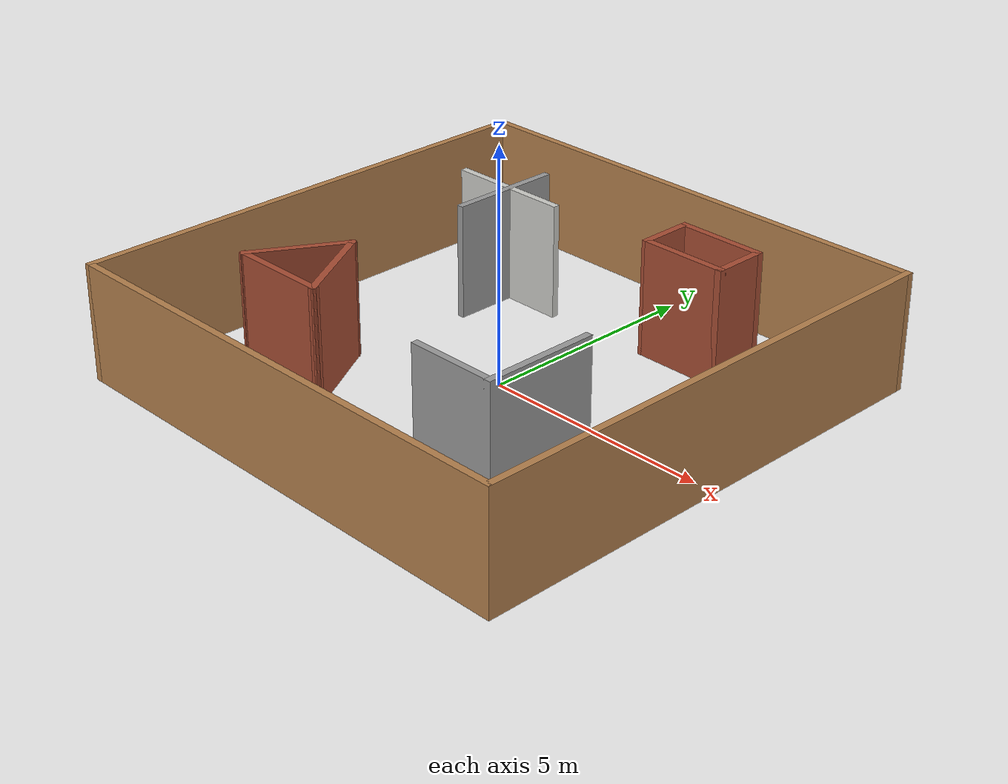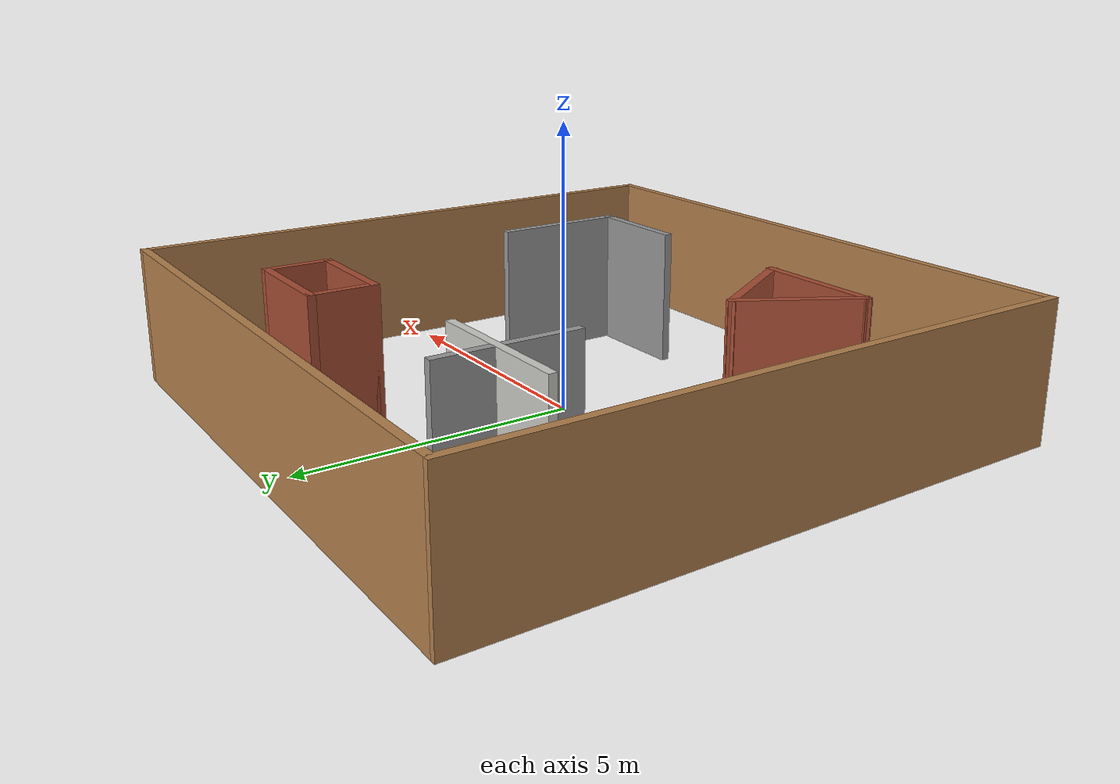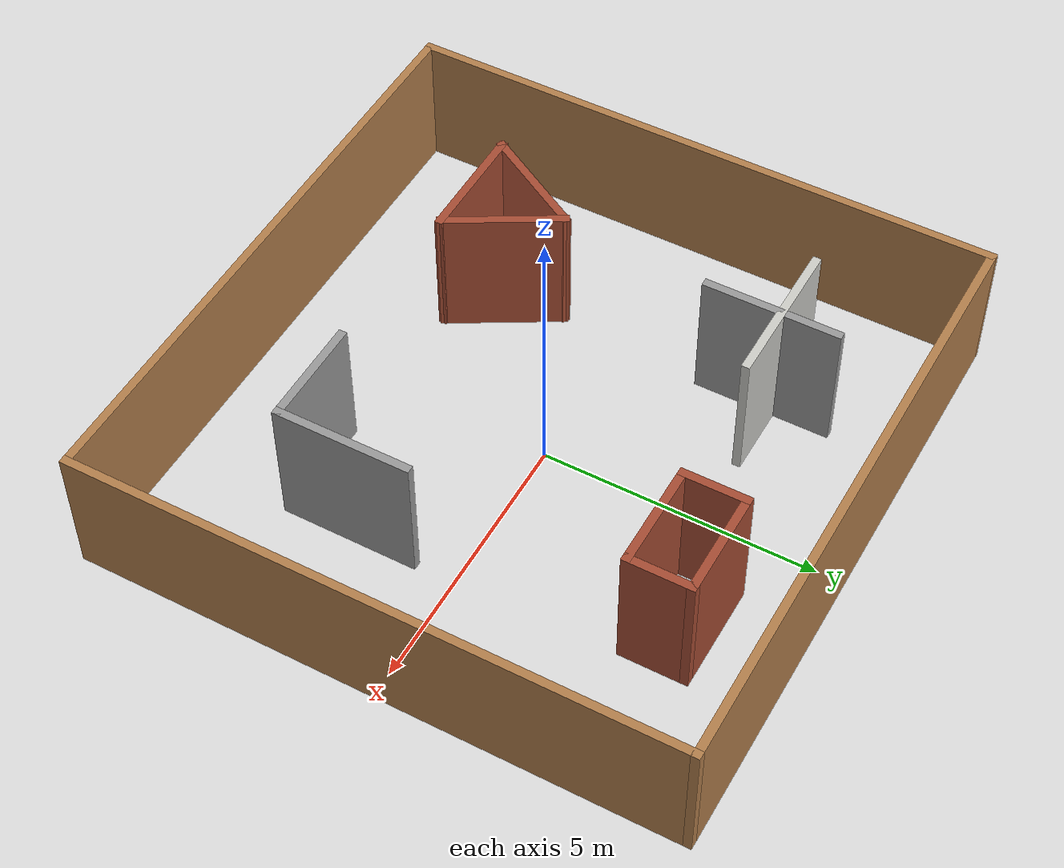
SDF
<?xml version='1.0'?>
<sdf version='1.7'>
  <model name='play_ground2'>
    <pose>-0.063113 -0.000109 0 0 -0 0</pose>
    <link name='Wall_14'>
      <collision name='Wall_14_Collision'>
        <geometry>
          <box>
            <size>2 0.15 2.5</size>
          </box>
        </geometry>
        <pose>0 0 1.25 0 -0 0</pose>
      </collision>
      <visual name='Wall_14_Visual'>
        <pose>0 0 1.25 0 -0 0</pose>
        <geometry>
          <box>
            <size>2 0.15 2.5</size>
          </box>
        </geometry>
        <material>
          <script>
            <uri>file://media/materials/scripts/gazebo.material</uri>
            <name>Gazebo/Grey</name>
          </script>
          <ambient>1 1 1 1</ambient>
        </material>
        <meta>
          <layer>0</layer>
        </meta>
      </visual>
      <pose>2.1479 -3.11007 0 0 -0 3.14159</pose>
    </link>
    <link name='Wall_16'>
      <collision name='Wall_16_Collision'>
        <geometry>
          <box>
            <size>2.5 0.15 2.5</size>
          </box>
        </geometry>
        <pose>0 0 1.25 0 -0 0</pose>
      </collision>
      <visual name='Wall_16_Visual'>
        <pose>0 0 1.25 0 -0 0</pose>
        <geometry>
          <box>
            <size>2.5 0.15 2.5</size>
          </box>
        </geometry>
        <material>
          <script>
            <uri>file://media/materials/scripts/gazebo.material</uri>
            <name>Gazebo/Grey</name>
          </script>
          <ambient>1 1 1 1</ambient>
        </material>
        <meta>
          <layer>0</layer>
        </meta>
      </visual>
      <pose>3.0729 -1.93507 0 0 -0 1.5708</pose>
    </link>
    <link name='Wall_18'>
      <collision name='Wall_18_Collision'>
        <geometry>
          <box>
            <size>2.5 0.15 2.5</size>
          </box>
        </geometry>
        <pose>0 0 1.25 0 -0 0</pose>
      </collision>
      <visual name='Wall_18_Visual'>
        <pose>0 0 1.25 0 -0 0</pose>
        <geometry>
          <box>
            <size>2.5 0.15 2.5</size>
          </box>
        </geometry>
        <material>
          <script>
            <uri>file://media/materials/scripts/gazebo.material</uri>
            <name>Gazebo/Grey</name>
          </script>
          <ambient>1 1 1 1</ambient>
        </material>
        <meta>
          <layer>0</layer>
        </meta>
      </visual>
      <pose>-2.64618 2.7406 0 0 -0 -1.5708</pose>
    </link>
    <link name='Wall_2'>
      <collision name='Wall_2_Collision'>
        <geometry>
          <box>
            <size>11 0.15 2.5</size>
          </box>
        </geometry>
        <pose>0 0 1.25 0 -0 0</pose>
      </collision>
      <visual name='Wall_2_Visual'>
        <pose>0 0 1.25 0 -0 0</pose>
        <geometry>
          <box>
            <size>11 0.15 2.5</size>
          </box>
        </geometry>
        <material>
          <script>
            <uri>file://media/materials/scripts/gazebo.material</uri>
            <name>Gazebo/Wood</name>
          </script>
          <ambient>1 1 1 1</ambient>
        </material>
        <meta>
          <layer>0</layer>
        </meta>
      </visual>
      <pose>-5.475 -0 0 0 -0 -1.5708</pose>
    </link>
    <link name='Wall_20'>
      <collision name='Wall_20_Collision'>
        <geometry>
          <box>
            <size>2.75 0.15 2.5</size>
          </box>
        </geometry>
        <pose>0 0 1.25 0 -0 0</pose>
      </collision>
      <visual name='Wall_20_Visual'>
        <pose>0 0 1.25 0 -0 0</pose>
        <geometry>
          <box>
            <size>2.75 0.15 2.5</size>
          </box>
        </geometry>
        <material>
          <script>
            <uri>file://media/materials/scripts/gazebo.material</uri>
            <name>Gazebo/CeilingTiled</name>
          </script>
          <ambient>1 1 1 1</ambient>
        </material>
        <meta>
          <layer>0</layer>
        </meta>
      </visual>
      <pose>-2.66462 2.90324 0 0 -0 0</pose>
    </link>
    <link name='Wall_22'>
      <collision name='Wall_22_Collision'>
        <geometry>
          <box>
            <size>2.25 0.15 2.5</size>
          </box>
        </geometry>
        <pose>0 0 1.25 0 -0 0</pose>
      </collision>
      <visual name='Wall_22_Visual'>
        <pose>0 0 1.25 0 -0 0</pose>
        <geometry>
          <box>
            <size>2.25 0.15 2.5</size>
          </box>
        </geometry>
        <material>
          <script>
            <uri>file://media/materials/scripts/gazebo.material</uri>
            <name>Gazebo/Bricks</name>
          </script>
          <ambient>1 1 1 1</ambient>
        </material>
        <meta>
          <layer>0</layer>
        </meta>
      </visual>
      <pose>-2.8221 -3.0182 0 0 -0 0</pose>
    </link>
    <link name='Wall_23'>
      <collision name='Wall_23_Collision'>
        <geometry>
          <box>
            <size>2.25 0.15 2.5</size>
          </box>
        </geometry>
        <pose>0 0 1.25 0 -0 0</pose>
      </collision>
      <visual name='Wall_23_Visual'>
        <pose>0 0 1.25 0 -0 0</pose>
        <geometry>
          <box>
            <size>2.25 0.15 2.5</size>
          </box>
        </geometry>
        <material>
          <script>
            <uri>file://media/materials/scripts/gazebo.material</uri>
            <name>Gazebo/Bricks</name>
          </script>
          <ambient>1 1 1 1</ambient>
        </material>
        <meta>
          <layer>0</layer>
        </meta>
      </visual>
      <pose>-2.2971 -2.10887 0 0 -0 2.0944</pose>
    </link>
    <link name='Wall_24'>
      <collision name='Wall_24_Collision'>
        <geometry>
          <box>
            <size>2.25 0.15 2.5</size>
          </box>
        </geometry>
        <pose>0 0 1.25 0 -0 0</pose>
      </collision>
      <visual name='Wall_24_Visual'>
        <pose>0 0 1.25 0 -0 0</pose>
        <geometry>
          <box>
            <size>2.25 0.15 2.5</size>
          </box>
        </geometry>
        <material>
          <script>
            <uri>file://media/materials/scripts/gazebo.material</uri>
            <name>Gazebo/Bricks</name>
          </script>
          <ambient>1 1 1 1</ambient>
        </material>
        <meta>
          <layer>0</layer>
        </meta>
      </visual>
      <pose>-3.3471 -2.10887 0 0 -0 -2.0944</pose>
    </link>
    <link name='Wall_26'>
      <collision name='Wall_26_Collision'>
        <geometry>
          <box>
            <size>2 0.15 2.5</size>
          </box>
        </geometry>
        <pose>0 0 1.25 0 -0 0</pose>
      </collision>
      <visual name='Wall_26_Visual'>
        <pose>0 0 1.25 0 -0 0</pose>
        <geometry>
          <box>
            <size>2 0.15 2.5</size>
          </box>
        </geometry>
        <material>
          <script>
            <uri>file://media/materials/scripts/gazebo.material</uri>
            <name>Gazebo/Bricks</name>
          </script>
          <ambient>1 1 1 1</ambient>
        </material>
        <meta>
          <layer>0</layer>
        </meta>
      </visual>
      <pose>2.02598 2.99576 0 0 -0 0</pose>
    </link>
    <link name='Wall_27'>
      <collision name='Wall_27_Collision'>
        <geometry>
          <box>
            <size>1.25 0.15 2.5</size>
          </box>
        </geometry>
        <pose>0 0 1.25 0 -0 0</pose>
      </collision>
      <visual name='Wall_27_Visual'>
        <pose>0 0 1.25 0 -0 0</pose>
        <geometry>
          <box>
            <size>1.25 0.15 2.5</size>
          </box>
        </geometry>
        <material>
          <script>
            <uri>file://media/materials/scripts/gazebo.material</uri>
            <name>Gazebo/Bricks</name>
          </script>
          <ambient>1 1 1 1</ambient>
        </material>
        <meta>
          <layer>0</layer>
        </meta>
      </visual>
      <pose>2.95098 3.54576 0 0 -0 1.5708</pose>
    </link>
    <link name='Wall_28'>
      <collision name='Wall_28_Collision'>
        <geometry>
          <box>
            <size>2 0.15 2.5</size>
          </box>
        </geometry>
        <pose>0 0 1.25 0 -0 0</pose>
      </collision>
      <visual name='Wall_28_Visual'>
        <pose>0 0 1.25 0 -0 0</pose>
        <geometry>
          <box>
            <size>2 0.15 2.5</size>
          </box>
        </geometry>
        <material>
          <script>
            <uri>file://media/materials/scripts/gazebo.material</uri>
            <name>Gazebo/Bricks</name>
          </script>
          <ambient>1 1 1 1</ambient>
        </material>
        <meta>
          <layer>0</layer>
        </meta>
      </visual>
      <pose>2.02598 4.09576 0 0 -0 3.14159</pose>
    </link>
    <link name='Wall_29'>
      <collision name='Wall_29_Collision'>
        <geometry>
          <box>
            <size>1.25 0.15 2.5</size>
          </box>
        </geometry>
        <pose>0 0 1.25 0 -0 0</pose>
      </collision>
      <visual name='Wall_29_Visual'>
        <pose>0 0 1.25 0 -0 0</pose>
        <geometry>
          <box>
            <size>1.25 0.15 2.5</size>
          </box>
        </geometry>
        <material>
          <script>
            <uri>file://media/materials/scripts/gazebo.material</uri>
            <name>Gazebo/Bricks</name>
          </script>
          <ambient>1 1 1 1</ambient>
        </material>
        <meta>
          <layer>0</layer>
        </meta>
      </visual>
      <pose>1.10098 3.54576 0 0 -0 -1.5708</pose>
    </link>
    <link name='Wall_5'>
      <collision name='Wall_5_Collision'>
        <geometry>
          <box>
            <size>11 0.15 2.5</size>
          </box>
        </geometry>
        <pose>0 0 1.25 0 -0 0</pose>
      </collision>
      <visual name='Wall_5_Visual'>
        <pose>0 0 1.25 0 -0 0</pose>
        <geometry>
          <box>
            <size>11 0.15 2.5</size>
          </box>
        </geometry>
        <material>
          <script>
            <uri>file://media/materials/scripts/gazebo.material</uri>
            <name>Gazebo/Wood</name>
          </script>
          <ambient>1 1 1 1</ambient>
        </material>
        <meta>
          <layer>0</layer>
        </meta>
      </visual>
      <pose>0.05 -5.425 0 0 -0 0</pose>
    </link>
    <link name='Wall_7'>
      <collision name='Wall_7_Collision'>
        <geometry>
          <box>
            <size>11 0.15 2.5</size>
          </box>
        </geometry>
        <pose>0 0 1.25 0 -0 0</pose>
      </collision>
      <visual name='Wall_7_Visual'>
        <pose>0 0 1.25 0 -0 0</pose>
        <geometry>
          <box>
            <size>11 0.15 2.5</size>
          </box>
        </geometry>
        <material>
          <script>
            <uri>file://media/materials/scripts/gazebo.material</uri>
            <name>Gazebo/Wood</name>
          </script>
          <ambient>1 1 1 1</ambient>
        </material>
        <meta>
          <layer>0</layer>
        </meta>
      </visual>
      <pose>5.475 -0 0 0 -0 1.5708</pose>
    </link>
    <link name='Wall_8'>
      <collision name='Wall_8_Collision'>
        <geometry>
          <box>
            <size>11 0.15 2.5</size>
          </box>
        </geometry>
        <pose>0 0 1.25 0 -0 0</pose>
      </collision>
      <visual name='Wall_8_Visual'>
        <pose>0 0 1.25 0 -0 0</pose>
        <geometry>
          <box>
            <size>11 0.15 2.5</size>
          </box>
        </geometry>
        <material>
          <script>
            <uri>file://media/materials/scripts/gazebo.material</uri>
            <name>Gazebo/Wood</name>
          </script>
          <ambient>1 1 1 1</ambient>
        </material>
        <meta>
          <layer>0</layer>
        </meta>
      </visual>
      <pose>0.05 5.425 0 0 -0 3.14159</pose>
    </link>
    <static>1</static>
  </model>
</sdf>
